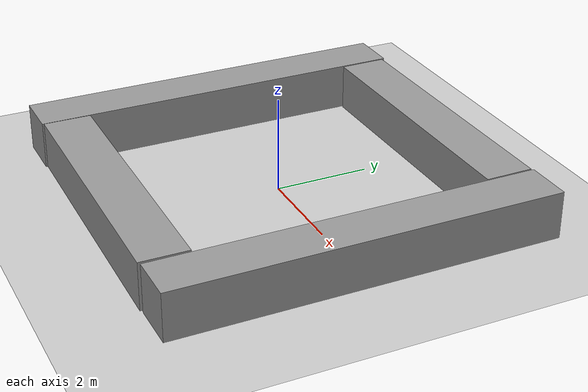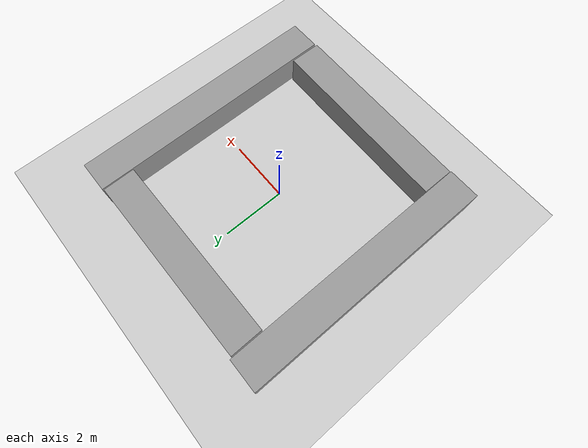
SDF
<sdf version="1.6">
 <world name="default">
  <physics name="default_physics" default="0" type="ode">
   <ode>
    <solver>
     <type>quick</type>
     <iters>20</iters>
     <sor>1</sor>
     <use_dynamic_moi_rescaling>0</use_dynamic_moi_rescaling>
    </solver>
    <constraints>
     <cfm>0</cfm>
     <erp>0.2</erp>
     <contact_max_correcting_vel>100</contact_max_correcting_vel>
     <contact_surface_layer>0</contact_surface_layer>
    </constraints>
   </ode>
   <max_step_size>0.001</max_step_size>
   <real_time_factor>1</real_time_factor>
   <real_time_update_rate>1000</real_time_update_rate>
  </physics>
  <light name="sun" type="directional">
   <pose>0 0 10 0 -0 0</pose>
   <diffuse>0.8 0.8 0.8 1</diffuse>
   <specular>0.2 0.2 0.2 1</specular>
   <attenuation>
    <range>1000</range>
    <constant>0.9</constant>
    <linear>0.01</linear>
    <quadratic>0.001</quadratic>
   </attenuation>
   <direction>-0.5 0.1 -0.9</direction>
  </light>
  <model name="ground_plane">
   <static>1</static>
   <link name="link">
    <collision name="collision">
     <geometry><plane><normal>0 0 1</normal><size>100 100</size></plane></geometry>
     <surface>
      <contact><collide_bitmask>65535</collide_bitmask></contact>
      <friction><ode><mu>100</mu><mu2>50</mu2></ode></friction>
     </surface>
    </collision>
    <visual name="visual">
     <cast_shadows>0</cast_shadows>
     <geometry><plane><normal>0 0 1</normal><size>100 100</size></plane></geometry>
     <material>
      <script><uri>file://media/materials/scripts/gazebo.material</uri><name>Gazebo/Grey</name></script>
     </material>
    </visual>
   </link>
  </model>
  <gravity>0 0 -9.8</gravity>
  <magnetic_field>6e-06 2.3e-05 -4.2e-05</magnetic_field>
  <atmosphere type="adiabatic"/>
  <scene><ambient>0.4 0.4 0.4 1</ambient><background>0.7 0.7 0.7 1</background><shadows>1</shadows></scene>
  <audio><device>default</device></audio>
  <spherical_coordinates>
   <surface_model>EARTH_WGS84</surface_model>
   <latitude_deg>0</latitude_deg>
   <longitude_deg>0</longitude_deg>
   <elevation>0</elevation>
   <heading_deg>0</heading_deg>
  </spherical_coordinates>
  <model name="unit_box10">
   <link name="link">
    <inertial>
     <mass>10000</mass>
     <inertia><ixx>55334.9</ixx><ixy>0</ixy><ixz>0</ixz><iyy>1666.67</iyy><iyz>0</iyz><izz>55334.9</izz></inertia>
    </inertial>
    <visual name="visual">
     <geometry><box><size>1 8.08714 1</size></box></geometry>
     <material>
      <script><name>Gazebo/Grey</name><uri>file://media/materials/scripts/gazebo.material</uri></script>
      <shader type="vertex"><normal_map>__default__</normal_map></shader>
     </material>
    </visual>
    <collision name="collision">
     <geometry><box><size>1 8.08714 1</size></box></geometry>
     <surface>
      <friction>
       <ode><mu>1</mu><mu2>1</mu2><fdir1>0 0 0</fdir1><slip1>0</slip1><slip2>0</slip2></ode>
       <torsional>
        <coefficient>1</coefficient>
        <patch_radius>0</patch_radius>
        <surface_radius>0</surface_radius>
        <use_patch_radius>1</use_patch_radius>
        <ode><slip>0</slip></ode>
       </torsional>
      </friction>
      <bounce><restitution_coefficient>0</restitution_coefficient><threshold>1e+06</threshold></bounce>
      <contact>
       <collide_without_contact>0</collide_without_contact>
       <collide_without_contact_bitmask>1</collide_without_contact_bitmask>
       <collide_bitmask>1</collide_bitmask>
       <ode>
        <soft_cfm>0</soft_cfm>
        <soft_erp>0.2</soft_erp>
        <kp>1e+13</kp>
        <kd>1</kd>
        <max_vel>0.01</max_vel>
        <min_depth>0</min_depth>
       </ode>
       <bullet>
        <split_impulse>1</split_impulse>
        <split_impulse_penetration_threshold>-0.01</split_impulse_penetration_threshold>
        <soft_cfm>0</soft_cfm>
        <soft_erp>0.2</soft_erp>
        <kp>1e+13</kp>
        <kd>1</kd>
       </bullet>
      </contact>
     </surface>
    </collision>
   </link>
   <static>0</static>
   <pose>-3.45304 0.016839 0.5 0 1e-06 0</pose>
  </model>
  <model name="unit_box10_clone">
   <link name="link">
    <inertial>
     <mass>10000</mass>
     <inertia><ixx>55334.9</ixx><ixy>0</ixy><ixz>0</ixz><iyy>1666.67</iyy><iyz>0</iyz><izz>55334.9</izz></inertia>
    </inertial>
    <visual name="visual">
     <geometry><box><size>1 8.08714 1</size></box></geometry>
     <material>
      <script><name>Gazebo/Grey</name><uri>file://media/materials/scripts/gazebo.material</uri></script>
      <shader type="vertex"><normal_map>__default__</normal_map></shader>
     </material>
    </visual>
    <collision name="collision">
     <geometry><box><size>1 8.08714 1</size></box></geometry>
     <surface>
      <friction>
       <ode><mu>1</mu><mu2>1</mu2><fdir1>0 0 0</fdir1><slip1>0</slip1><slip2>0</slip2></ode>
       <torsional>
        <coefficient>1</coefficient>
        <patch_radius>0</patch_radius>
        <surface_radius>0</surface_radius>
        <use_patch_radius>1</use_patch_radius>
        <ode><slip>0</slip></ode>
       </torsional>
      </friction>
      <bounce><restitution_coefficient>0</restitution_coefficient><threshold>1e+06</threshold></bounce>
      <contact>
       <collide_without_contact>0</collide_without_contact>
       <collide_without_contact_bitmask>1</collide_without_contact_bitmask>
       <collide_bitmask>1</collide_bitmask>
       <ode>
        <soft_cfm>0</soft_cfm>
        <soft_erp>0.2</soft_erp>
        <kp>1e+13</kp>
        <kd>1</kd>
        <max_vel>0.01</max_vel>
        <min_depth>0</min_depth>
       </ode>
       <bullet>
        <split_impulse>1</split_impulse>
        <split_impulse_penetration_threshold>-0.01</split_impulse_penetration_threshold>
        <soft_cfm>0</soft_cfm>
        <soft_erp>0.2</soft_erp>
        <kp>1e+13</kp>
        <kd>1</kd>
       </bullet>
      </contact>
     </surface>
    </collision>
   </link>
   <static>0</static>
   <pose>3.5192 0.022651 0.5 0 1e-06 0</pose>
  </model>
  <model name="unit_box10_clone_0">
   <link name="link">
    <inertial>
     <mass>10000</mass>
     <inertia><ixx>55334.9</ixx><ixy>0</ixy><ixz>0</ixz><iyy>1666.67</iyy><iyz>0</iyz><izz>55334.9</izz></inertia>
    </inertial>
    <visual name="visual">
     <geometry><box><size>1 5.89829 1</size></box></geometry>
     <material>
      <script><name>Gazebo/Grey</name><uri>file://media/materials/scripts/gazebo.material</uri></script>
      <shader type="vertex"><normal_map>__default__</normal_map></shader>
     </material>
    </visual>
    <collision name="collision">
     <geometry><box><size>1 5.89829 1</size></box></geometry>
     <surface>
      <friction>
       <ode><mu>1</mu><mu2>1</mu2><fdir1>0 0 0</fdir1><slip1>0</slip1><slip2>0</slip2></ode>
       <torsional>
        <coefficient>1</coefficient>
        <patch_radius>0</patch_radius>
        <surface_radius>0</surface_radius>
        <use_patch_radius>1</use_patch_radius>
        <ode><slip>0</slip></ode>
       </torsional>
      </friction>
      <bounce><restitution_coefficient>0</restitution_coefficient><threshold>1e+06</threshold></bounce>
      <contact>
       <collide_without_contact>0</collide_without_contact>
       <collide_without_contact_bitmask>1</collide_without_contact_bitmask>
       <collide_bitmask>1</collide_bitmask>
       <ode>
        <soft_cfm>0</soft_cfm>
        <soft_erp>0.2</soft_erp>
        <kp>1e+13</kp>
        <kd>1</kd>
        <max_vel>0.01</max_vel>
        <min_depth>0</min_depth>
       </ode>
       <bullet>
        <split_impulse>1</split_impulse>
        <split_impulse_penetration_threshold>-0.01</split_impulse_penetration_threshold>
        <soft_cfm>0</soft_cfm>
        <soft_erp>0.2</soft_erp>
        <kp>1e+13</kp>
        <kd>1</kd>
       </bullet>
      </contact>
     </surface>
    </collision>
   </link>
   <static>0</static>
   <pose>0.011173 -3.52406 0.5 0 0 -1.58148</pose>
  </model>
  <model name="unit_box10_clone_0_clone">
   <link name="link">
    <inertial>
     <mass>10000</mass>
     <inertia><ixx>55334.9</ixx><ixy>0</ixy><ixz>0</ixz><iyy>1666.67</iyy><iyz>0</iyz><izz>55334.9</izz></inertia>
    </inertial>
    <visual name="visual">
     <geometry><box><size>1 5.89829 1</size></box></geometry>
     <material>
      <script><name>Gazebo/Grey</name><uri>file://media/materials/scripts/gazebo.material</uri></script>
      <shader type="vertex"><normal_map>__default__</normal_map></shader>
     </material>
    </visual>
    <collision name="collision">
     <geometry><box><size>1 5.89829 1</size></box></geometry>
     <surface>
      <friction>
       <ode><mu>1</mu><mu2>1</mu2><fdir1>0 0 0</fdir1><slip1>0</slip1><slip2>0</slip2></ode>
       <torsional>
        <coefficient>1</coefficient>
        <patch_radius>0</patch_radius>
        <surface_radius>0</surface_radius>
        <use_patch_radius>1</use_patch_radius>
        <ode><slip>0</slip></ode>
       </torsional>
      </friction>
      <bounce><restitution_coefficient>0</restitution_coefficient><threshold>1e+06</threshold></bounce>
      <contact>
       <collide_without_contact>0</collide_without_contact>
       <collide_without_contact_bitmask>1</collide_without_contact_bitmask>
       <collide_bitmask>1</collide_bitmask>
       <ode>
        <soft_cfm>0</soft_cfm>
        <soft_erp>0.2</soft_erp>
        <kp>1e+13</kp>
        <kd>1</kd>
        <max_vel>0.01</max_vel>
        <min_depth>0</min_depth>
       </ode>
       <bullet>
        <split_impulse>1</split_impulse>
        <split_impulse_penetration_threshold>-0.01</split_impulse_penetration_threshold>
        <soft_cfm>0</soft_cfm>
        <soft_erp>0.2</soft_erp>
        <kp>1e+13</kp>
        <kd>1</kd>
       </bullet>
      </contact>
     </surface>
    </collision>
   </link>
   <static>0</static>
   <pose>0.034968 3.51322 0.5 0 -0 -1.56415</pose>
  </model>
 </world>
</sdf>
